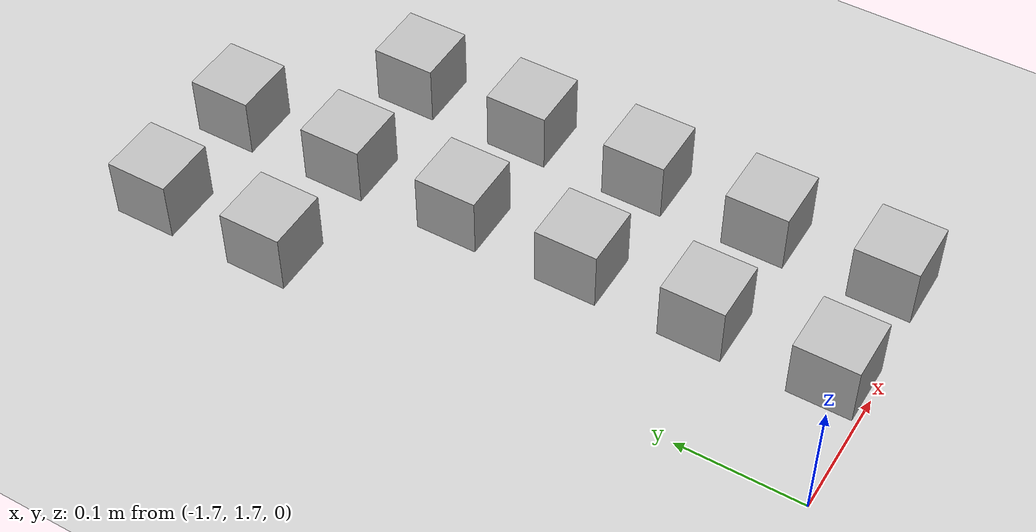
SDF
<sdf version="1.6">
 <world name="default">
  <model name="ground_plane">
   <static>1</static>
   <link name="link">
    <collision name="collision">
     <geometry><plane><normal>0 0 1</normal><size>100 100</size></plane></geometry>
     <surface><friction><ode><mu>100</mu><mu2>50</mu2></ode></friction></surface>
    </collision>
    <visual name="visual">
     <cast_shadows>0</cast_shadows>
     <geometry><plane><normal>0 0 1</normal><size>100 100</size></plane></geometry>
     <material>
      <script><uri>file://media/materials/scripts/gazebo.material</uri><name>Gazebo/Grey</name></script>
     </material>
    </visual>
   </link>
  </model>
  <model name="at6">
   <static>0</static>
   <link name="link">
    <inertial>
     <mass>0.01</mass>
     <inertia><ixx>4e-05</ixx><ixy>0</ixy><ixz>0</ixz><iyy>4e-05</iyy><iyz>0</iyz><izz>4e-05</izz></inertia>
    </inertial>
    <visual name="visual">
     <geometry><box><size>0.05 0.05 0.05</size></box></geometry>
     <material>
      <script>
       <uri>model://at0/materials/scripts</uri>
       <uri>model://at0/materials/textures</uri>
       <name>at0/Diffuse</name>
      </script>
     </material>
    </visual>
    <collision name="collision">
     <geometry><box><size>0.05 0.05 0.05</size></box></geometry>
     <surface><friction><ode><mu>0.8</mu><mu2>0.7</mu2></ode></friction></surface>
    </collision>
   </link>
   <pose>-1.59673 1.72921 0.024993 -2.9e-05 2.9e-05 -2e-06</pose>
  </model>
  <model name="at7">
   <static>0</static>
   <link name="link">
    <inertial>
     <mass>0.01</mass>
     <inertia><ixx>4e-05</ixx><ixy>0</ixy><ixz>0</ixz><iyy>4e-05</iyy><iyz>0</iyz><izz>4e-05</izz></inertia>
    </inertial>
    <visual name="visual">
     <geometry><box><size>0.05 0.05 0.05</size></box></geometry>
     <material>
      <script>
       <uri>model://at0/materials/scripts</uri>
       <uri>model://at0/materials/textures</uri>
       <name>at0/Diffuse</name>
      </script>
     </material>
    </visual>
    <collision name="collision">
     <geometry><box><size>0.05 0.05 0.05</size></box></geometry>
     <surface><friction><ode><mu>0.8</mu><mu2>0.7</mu2></ode></friction></surface>
    </collision>
   </link>
   <pose>-1.49673 1.72921 0.024993 2.9e-05 -2.9e-05 -2e-06</pose>
  </model>
  <model name="at14">
   <static>0</static>
   <link name="link">
    <inertial>
     <mass>0.01</mass>
     <inertia><ixx>4e-05</ixx><ixy>0</ixy><ixz>0</ixz><iyy>4e-05</iyy><iyz>0</iyz><izz>4e-05</izz></inertia>
    </inertial>
    <visual name="visual">
     <geometry><box><size>0.05 0.05 0.05</size></box></geometry>
     <material>
      <script>
       <uri>model://at0/materials/scripts</uri>
       <uri>model://at0/materials/textures</uri>
       <name>at0/Diffuse</name>
      </script>
     </material>
    </visual>
    <collision name="collision">
     <geometry><box><size>0.05 0.05 0.05</size></box></geometry>
     <surface><friction><ode><mu>0.8</mu><mu2>0.7</mu2></ode></friction></surface>
    </collision>
   </link>
   <pose>-1.59673 1.82921 0.024993 -2.9e-05 2.9e-05 -2e-06</pose>
  </model>
  <model name="at15">
   <static>0</static>
   <link name="link">
    <inertial>
     <mass>0.01</mass>
     <inertia><ixx>4e-05</ixx><ixy>0</ixy><ixz>0</ixz><iyy>4e-05</iyy><iyz>0</iyz><izz>4e-05</izz></inertia>
    </inertial>
    <visual name="visual">
     <geometry><box><size>0.05 0.05 0.05</size></box></geometry>
     <material>
      <script>
       <uri>model://at0/materials/scripts</uri>
       <uri>model://at0/materials/textures</uri>
       <name>at0/Diffuse</name>
      </script>
     </material>
    </visual>
    <collision name="collision">
     <geometry><box><size>0.05 0.05 0.05</size></box></geometry>
     <surface><friction><ode><mu>0.8</mu><mu2>0.7</mu2></ode></friction></surface>
    </collision>
   </link>
   <pose>-1.49673 1.82921 0.024993 2.9e-05 -2.9e-05 -2e-06</pose>
  </model>
  <model name="at22">
   <static>0</static>
   <link name="link">
    <inertial>
     <mass>0.01</mass>
     <inertia><ixx>4e-05</ixx><ixy>0</ixy><ixz>0</ixz><iyy>4e-05</iyy><iyz>0</iyz><izz>4e-05</izz></inertia>
    </inertial>
    <visual name="visual">
     <geometry><box><size>0.05 0.05 0.05</size></box></geometry>
     <material>
      <script>
       <uri>model://at0/materials/scripts</uri>
       <uri>model://at0/materials/textures</uri>
       <name>at0/Diffuse</name>
      </script>
     </material>
    </visual>
    <collision name="collision">
     <geometry><box><size>0.05 0.05 0.05</size></box></geometry>
     <surface><friction><ode><mu>0.8</mu><mu2>0.7</mu2></ode></friction></surface>
    </collision>
   </link>
   <pose>-1.59673 1.92921 0.024993 -2.9e-05 2.9e-05 -2e-06</pose>
  </model>
  <model name="at23">
   <static>0</static>
   <link name="link">
    <inertial>
     <mass>0.01</mass>
     <inertia><ixx>4e-05</ixx><ixy>0</ixy><ixz>0</ixz><iyy>4e-05</iyy><iyz>0</iyz><izz>4e-05</izz></inertia>
    </inertial>
    <visual name="visual">
     <geometry><box><size>0.05 0.05 0.05</size></box></geometry>
     <material>
      <script>
       <uri>model://at0/materials/scripts</uri>
       <uri>model://at0/materials/textures</uri>
       <name>at0/Diffuse</name>
      </script>
     </material>
    </visual>
    <collision name="collision">
     <geometry><box><size>0.05 0.05 0.05</size></box></geometry>
     <surface><friction><ode><mu>0.8</mu><mu2>0.7</mu2></ode></friction></surface>
    </collision>
   </link>
   <pose>-1.49673 1.92921 0.024993 2.9e-05 -2.9e-05 -2e-06</pose>
  </model>
  <model name="at30">
   <static>0</static>
   <link name="link">
    <inertial>
     <mass>0.01</mass>
     <inertia><ixx>4e-05</ixx><ixy>0</ixy><ixz>0</ixz><iyy>4e-05</iyy><iyz>0</iyz><izz>4e-05</izz></inertia>
    </inertial>
    <visual name="visual">
     <geometry><box><size>0.05 0.05 0.05</size></box></geometry>
     <material>
      <script>
       <uri>model://at0/materials/scripts</uri>
       <uri>model://at0/materials/textures</uri>
       <name>at0/Diffuse</name>
      </script>
     </material>
    </visual>
    <collision name="collision">
     <geometry><box><size>0.05 0.05 0.05</size></box></geometry>
     <surface><friction><ode><mu>0.8</mu><mu2>0.7</mu2></ode></friction></surface>
    </collision>
   </link>
   <pose>-1.59673 2.02921 0.024993 -2.9e-05 2.9e-05 -2e-06</pose>
  </model>
  <model name="at31">
   <static>0</static>
   <link name="link">
    <inertial>
     <mass>0.01</mass>
     <inertia><ixx>4e-05</ixx><ixy>0</ixy><ixz>0</ixz><iyy>4e-05</iyy><iyz>0</iyz><izz>4e-05</izz></inertia>
    </inertial>
    <visual name="visual">
     <geometry><box><size>0.05 0.05 0.05</size></box></geometry>
     <material>
      <script>
       <uri>model://at0/materials/scripts</uri>
       <uri>model://at0/materials/textures</uri>
       <name>at0/Diffuse</name>
      </script>
     </material>
    </visual>
    <collision name="collision">
     <geometry><box><size>0.05 0.05 0.05</size></box></geometry>
     <surface><friction><ode><mu>0.8</mu><mu2>0.7</mu2></ode></friction></surface>
    </collision>
   </link>
   <pose>-1.49673 2.02921 0.024993 2.9e-05 -2.9e-05 -2e-06</pose>
  </model>
  <model name="at37">
   <static>0</static>
   <link name="link">
    <inertial>
     <mass>0.01</mass>
     <inertia><ixx>4e-05</ixx><ixy>0</ixy><ixz>0</ixz><iyy>4e-05</iyy><iyz>0</iyz><izz>4e-05</izz></inertia>
    </inertial>
    <visual name="visual">
     <geometry><box><size>0.05 0.05 0.05</size></box></geometry>
     <material>
      <script>
       <uri>model://at0/materials/scripts</uri>
       <uri>model://at0/materials/textures</uri>
       <name>at0/Diffuse</name>
      </script>
     </material>
    </visual>
    <collision name="collision">
     <geometry><box><size>0.05 0.05 0.05</size></box></geometry>
     <surface><friction><ode><mu>0.8</mu><mu2>0.7</mu2></ode></friction></surface>
    </collision>
   </link>
   <pose>-1.69673 2.12921 0.024993 2.9e-05 -2.9e-05 -2e-06</pose>
  </model>
  <model name="at38">
   <static>0</static>
   <link name="link">
    <inertial>
     <mass>0.01</mass>
     <inertia><ixx>4e-05</ixx><ixy>0</ixy><ixz>0</ixz><iyy>4e-05</iyy><iyz>0</iyz><izz>4e-05</izz></inertia>
    </inertial>
    <visual name="visual">
     <geometry><box><size>0.05 0.05 0.05</size></box></geometry>
     <material>
      <script>
       <uri>model://at0/materials/scripts</uri>
       <uri>model://at0/materials/textures</uri>
       <name>at0/Diffuse</name>
      </script>
     </material>
    </visual>
    <collision name="collision">
     <geometry><box><size>0.05 0.05 0.05</size></box></geometry>
     <surface><friction><ode><mu>0.8</mu><mu2>0.7</mu2></ode></friction></surface>
    </collision>
   </link>
   <pose>-1.59673 2.12921 0.024993 -2.9e-05 2.9e-05 -2e-06</pose>
  </model>
  <model name="at39">
   <static>0</static>
   <link name="link">
    <inertial>
     <mass>0.01</mass>
     <inertia><ixx>4e-05</ixx><ixy>0</ixy><ixz>0</ixz><iyy>4e-05</iyy><iyz>0</iyz><izz>4e-05</izz></inertia>
    </inertial>
    <visual name="visual">
     <geometry><box><size>0.05 0.05 0.05</size></box></geometry>
     <material>
      <script>
       <uri>model://at0/materials/scripts</uri>
       <uri>model://at0/materials/textures</uri>
       <name>at0/Diffuse</name>
      </script>
     </material>
    </visual>
    <collision name="collision">
     <geometry><box><size>0.05 0.05 0.05</size></box></geometry>
     <surface><friction><ode><mu>0.8</mu><mu2>0.7</mu2></ode></friction></surface>
    </collision>
   </link>
   <pose>-1.49673 2.12921 0.024993 -2.9e-05 2.9e-05 -2e-06</pose>
  </model>
  <model name="at45">
   <static>0</static>
   <link name="link">
    <inertial>
     <mass>0.01</mass>
     <inertia><ixx>4e-05</ixx><ixy>0</ixy><ixz>0</ixz><iyy>4e-05</iyy><iyz>0</iyz><izz>4e-05</izz></inertia>
    </inertial>
    <visual name="visual">
     <geometry><box><size>0.05 0.05 0.05</size></box></geometry>
     <material>
      <script>
       <uri>model://at0/materials/scripts</uri>
       <uri>model://at0/materials/textures</uri>
       <name>at0/Diffuse</name>
      </script>
     </material>
    </visual>
    <collision name="collision">
     <geometry><box><size>0.05 0.05 0.05</size></box></geometry>
     <surface><friction><ode><mu>0.8</mu><mu2>0.7</mu2></ode></friction></surface>
    </collision>
   </link>
   <pose>-1.69673 2.22921 0.024993 -2.9e-05 2.9e-05 -2e-06</pose>
  </model>
  <model name="at46">
   <static>0</static>
   <link name="link">
    <inertial>
     <mass>0.01</mass>
     <inertia><ixx>4e-05</ixx><ixy>0</ixy><ixz>0</ixz><iyy>4e-05</iyy><iyz>0</iyz><izz>4e-05</izz></inertia>
    </inertial>
    <visual name="visual">
     <geometry><box><size>0.05 0.05 0.05</size></box></geometry>
     <material>
      <script>
       <uri>model://at0/materials/scripts</uri>
       <uri>model://at0/materials/textures</uri>
       <name>at0/Diffuse</name>
      </script>
     </material>
    </visual>
    <collision name="collision">
     <geometry><box><size>0.05 0.05 0.05</size></box></geometry>
     <surface><friction><ode><mu>0.8</mu><mu2>0.7</mu2></ode></friction></surface>
    </collision>
   </link>
   <pose>-1.59673 2.22921 0.024993 2.9e-05 -2.9e-05 -2e-06</pose>
  </model>
 </world>
</sdf>
